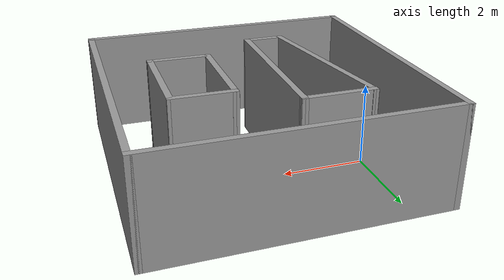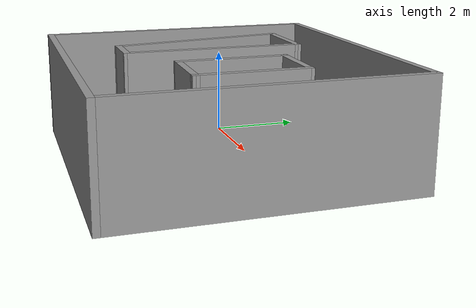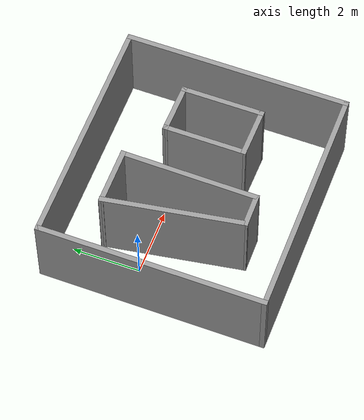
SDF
<?xml version='1.0'?>
<sdf version='1.7'>
  <model name='maze_like_6'>
    <pose>2.435 -0.77 0 0 -0 0</pose>
    <link name='Wall_30'>
      <collision name='Wall_30_Collision'>
        <geometry>
          <box>
            <size>4.19586 0.15 2.5</size>
          </box>
        </geometry>
        <pose>0 0 1.25 0 -0 0</pose>
      </collision>
      <visual name='Wall_30_Visual'>
        <pose>0 0 1.25 0 -0 0</pose>
        <geometry>
          <box>
            <size>4.19586 0.15 2.5</size>
          </box>
        </geometry>
        <material>
          <script>
            <uri>file://media/materials/scripts/gazebo.material</uri>
            <name>Gazebo/Grey</name>
          </script>
          <ambient>1 1 1 1</ambient>
        </material>
        <meta>
          <layer>0</layer>
        </meta>
      </visual>
      <pose>-1.62637 0.016474 0 0 -0 1.73716</pose>
    </link>
    <link name='Wall_32'>
      <collision name='Wall_32_Collision'>
        <geometry>
          <box>
            <size>1.75 0.15 2.5</size>
          </box>
        </geometry>
        <pose>0 0 1.25 0 -0 0</pose>
      </collision>
      <visual name='Wall_32_Visual'>
        <pose>0 0 1.25 0 -0 0</pose>
        <geometry>
          <box>
            <size>1.75 0.15 2.5</size>
          </box>
        </geometry>
        <material>
          <script>
            <uri>file://media/materials/scripts/gazebo.material</uri>
            <name>Gazebo/Grey</name>
          </script>
          <ambient>1 1 1 1</ambient>
        </material>
        <meta>
          <layer>0</layer>
        </meta>
      </visual>
      <pose>-1.16137 2.01147 0 0 -0 0</pose>
    </link>
    <link name='Wall_33'>
      <collision name='Wall_33_Collision'>
        <geometry>
          <box>
            <size>4.1302 0.15 2.5</size>
          </box>
        </geometry>
        <pose>0 0 1.25 0 -0 0</pose>
      </collision>
      <visual name='Wall_33_Visual'>
        <pose>0 0 1.25 0 -0 0</pose>
        <geometry>
          <box>
            <size>4.1302 0.15 2.5</size>
          </box>
        </geometry>
        <material>
          <script>
            <uri>file://media/materials/scripts/gazebo.material</uri>
            <name>Gazebo/Grey</name>
          </script>
          <ambient>1 1 1 1</ambient>
        </material>
        <meta>
          <layer>0</layer>
        </meta>
      </visual>
      <pose>-0.381371 0.021474 0 0 -0 -1.58085</pose>
    </link>
    <link name='Wall_35'>
      <collision name='Wall_35_Collision'>
        <geometry>
          <box>
            <size>1.04006 0.15 2.5</size>
          </box>
        </geometry>
        <pose>0 0 1.25 0 -0 0</pose>
      </collision>
      <visual name='Wall_35_Visual'>
        <pose>0 0 1.25 0 -0 0</pose>
        <geometry>
          <box>
            <size>1.04006 0.15 2.5</size>
          </box>
        </geometry>
        <material>
          <script>
            <uri>file://media/materials/scripts/gazebo.material</uri>
            <name>Gazebo/Grey</name>
          </script>
          <ambient>1 1 1 1</ambient>
        </material>
        <meta>
          <layer>0</layer>
        </meta>
      </visual>
      <pose>-0.846371 -1.97353 0 0 -0 0.011235</pose>
    </link>
    <link name='Wall_5'>
      <collision name='Wall_5_Collision'>
        <geometry>
          <box>
            <size>7 0.15 2.5</size>
          </box>
        </geometry>
        <pose>0 0 1.25 0 -0 0</pose>
      </collision>
      <visual name='Wall_5_Visual'>
        <pose>0 0 1.25 0 -0 0</pose>
        <geometry>
          <box>
            <size>7 0.15 2.5</size>
          </box>
        </geometry>
        <material>
          <script>
            <uri>file://media/materials/scripts/gazebo.material</uri>
            <name>Gazebo/Grey</name>
          </script>
          <ambient>1 1 1 1</ambient>
        </material>
        <meta>
          <layer>0</layer>
        </meta>
      </visual>
      <pose>-0 -3.3 0 0 -0 3.14159</pose>
    </link>
    <link name='Wall_51'>
      <collision name='Wall_51_Collision'>
        <geometry>
          <box>
            <size>2.49346 0.15 2.5</size>
          </box>
        </geometry>
        <pose>0 0 1.25 0 -0 0</pose>
      </collision>
      <visual name='Wall_51_Visual'>
        <pose>0 0 1.25 0 -0 0</pose>
        <geometry>
          <box>
            <size>2.49346 0.15 2.5</size>
          </box>
        </geometry>
        <material>
          <script>
            <uri>file://media/materials/scripts/gazebo.material</uri>
            <name>Gazebo/Grey</name>
          </script>
          <ambient>1 1 1 1</ambient>
        </material>
        <meta>
          <layer>0</layer>
        </meta>
      </visual>
      <pose>0.871563 0.032394 0 0 -0 -1.5708</pose>
    </link>
    <link name='Wall_53'>
      <collision name='Wall_53_Collision'>
        <geometry>
          <box>
            <size>2.49346 0.15 2.5</size>
          </box>
        </geometry>
        <pose>0 0 1.25 0 -0 0</pose>
      </collision>
      <visual name='Wall_53_Visual'>
        <pose>0 0 1.25 0 -0 0</pose>
        <geometry>
          <box>
            <size>2.49346 0.15 2.5</size>
          </box>
        </geometry>
        <material>
          <script>
            <uri>file://media/materials/scripts/gazebo.material</uri>
            <name>Gazebo/Grey</name>
          </script>
          <ambient>1 1 1 1</ambient>
        </material>
        <meta>
          <layer>0</layer>
        </meta>
      </visual>
      <pose>2.26417 0.006242 0 0 -0 -1.5708</pose>
    </link>
    <link name='Wall_57'>
      <collision name='Wall_57_Collision'>
        <geometry>
          <box>
            <size>1.54285 0.15 2.5</size>
          </box>
        </geometry>
        <pose>0 0 1.25 0 -0 0</pose>
      </collision>
      <visual name='Wall_57_Visual'>
        <pose>0 0 1.25 0 -0 0</pose>
        <geometry>
          <box>
            <size>1.54285 0.15 2.5</size>
          </box>
        </geometry>
        <material>
          <script>
            <uri>file://media/materials/scripts/gazebo.material</uri>
            <name>Gazebo/Grey</name>
          </script>
          <ambient>1 1 1 1</ambient>
        </material>
        <meta>
          <layer>0</layer>
        </meta>
      </visual>
      <pose>1.56786 1.19105 0 0 -0 -0.018777</pose>
    </link>
    <link name='Wall_59'>
      <collision name='Wall_59_Collision'>
        <geometry>
          <box>
            <size>1.54285 0.15 2.5</size>
          </box>
        </geometry>
        <pose>0 0 1.25 0 -0 0</pose>
      </collision>
      <visual name='Wall_59_Visual'>
        <pose>0 0 1.25 0 -0 0</pose>
        <geometry>
          <box>
            <size>1.54285 0.15 2.5</size>
          </box>
        </geometry>
        <material>
          <script>
            <uri>file://media/materials/scripts/gazebo.material</uri>
            <name>Gazebo/Grey</name>
          </script>
          <ambient>1 1 1 1</ambient>
        </material>
        <meta>
          <layer>0</layer>
        </meta>
      </visual>
      <pose>1.56786 -1.15241 0 0 -0 -0.018777</pose>
    </link>
    <link name='Wall_7'>
      <collision name='Wall_7_Collision'>
        <geometry>
          <box>
            <size>6.75 0.15 2.5</size>
          </box>
        </geometry>
        <pose>0 0 1.25 0 -0 0</pose>
      </collision>
      <visual name='Wall_7_Visual'>
        <pose>0 0 1.25 0 -0 0</pose>
        <geometry>
          <box>
            <size>6.75 0.15 2.5</size>
          </box>
        </geometry>
        <material>
          <script>
            <uri>file://media/materials/scripts/gazebo.material</uri>
            <name>Gazebo/Grey</name>
          </script>
          <ambient>1 1 1 1</ambient>
        </material>
        <meta>
          <layer>0</layer>
        </meta>
      </visual>
      <pose>-3.425 0 0 0 -0 1.5708</pose>
    </link>
    <link name='Wall_8'>
      <collision name='Wall_8_Collision'>
        <geometry>
          <box>
            <size>7 0.15 2.5</size>
          </box>
        </geometry>
        <pose>0 0 1.25 0 -0 0</pose>
      </collision>
      <visual name='Wall_8_Visual'>
        <pose>0 0 1.25 0 -0 0</pose>
        <geometry>
          <box>
            <size>7 0.15 2.5</size>
          </box>
        </geometry>
        <material>
          <script>
            <uri>file://media/materials/scripts/gazebo.material</uri>
            <name>Gazebo/Grey</name>
          </script>
          <ambient>1 1 1 1</ambient>
        </material>
        <meta>
          <layer>0</layer>
        </meta>
      </visual>
      <pose>-0 3.3 0 0 -0 0</pose>
    </link>
    <link name='Wall_9'>
      <collision name='Wall_9_Collision'>
        <geometry>
          <box>
            <size>6.75 0.15 2.5</size>
          </box>
        </geometry>
        <pose>0 0 1.25 0 -0 0</pose>
      </collision>
      <visual name='Wall_9_Visual'>
        <pose>0 0 1.25 0 -0 0</pose>
        <geometry>
          <box>
            <size>6.75 0.15 2.5</size>
          </box>
        </geometry>
        <material>
          <script>
            <uri>file://media/materials/scripts/gazebo.material</uri>
            <name>Gazebo/Grey</name>
          </script>
          <ambient>1 1 1 1</ambient>
        </material>
        <meta>
          <layer>0</layer>
        </meta>
      </visual>
      <pose>3.425 0 0 0 -0 -1.5708</pose>
    </link>
    <static>1</static>
  </model>
</sdf>
